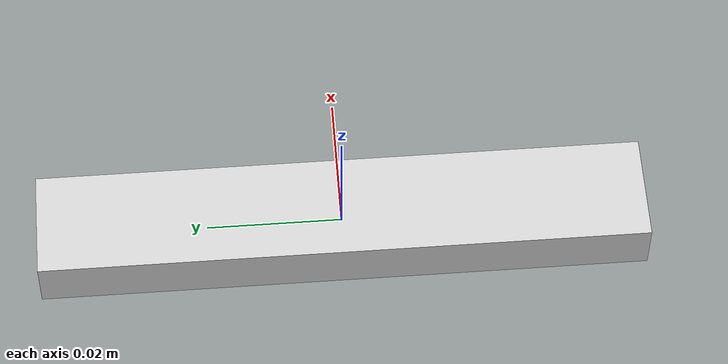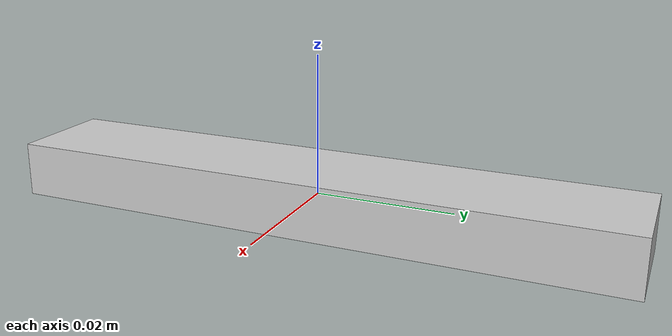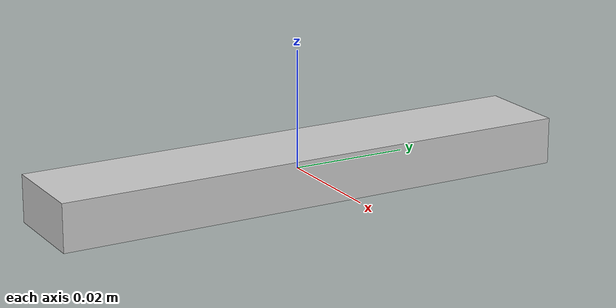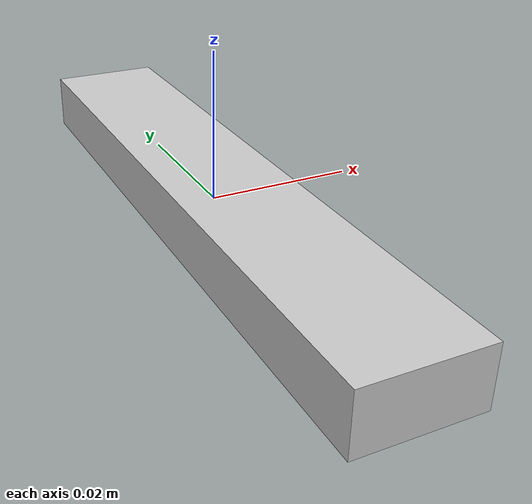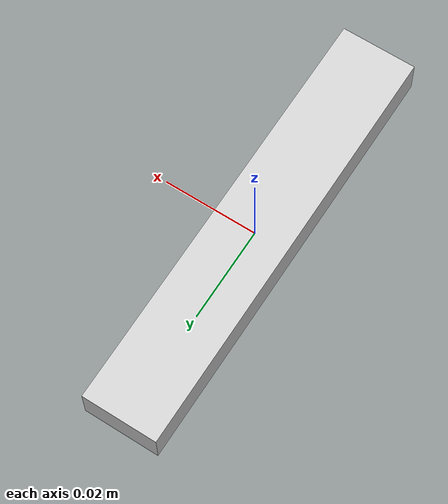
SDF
<?xml version="1.0" ?>
<sdf version="1.5">
  <!-- Scissors: box 0.016 x 0.090 x 0.008 → min(x,z) width = 8mm... but grip on 16mm axis: hand_close=12 -->
  <model name="scissors">
    <link name="link">
      <pose>0 0 0 0 0 0</pose>
      <inertial>
        <mass>0.010</mass>
        <inertia>
          <ixx>6.18e-6</ixx>
          <ixy>0</ixy><ixz>0</ixz>
          <iyy>6.87e-6</iyy>
          <iyz>0</iyz>
          <izz>8.53e-7</izz>
        </inertia>
      </inertial>
      <collision name="collision">
        <geometry>
          <box><size>0.016 0.090 0.008</size></box>
        </geometry>
        <surface>
          <contact><ode><kp>1000000</kp><kd>100</kd><max_vel>0.1</max_vel><min_depth>0.001</min_depth></ode></contact>
          <friction><ode><mu>1.0</mu><mu2>1.0</mu2></ode><torsional><coefficient>1.0</coefficient><use_patch_radius>0</use_patch_radius><surface_radius>0.008</surface_radius></torsional></friction>
        </surface>
      </collision>
      <visual name="visual">
        <geometry><box><size>0.016 0.090 0.008</size></box></geometry>
        <material><ambient>0.8 0.8 0.8 1</ambient><diffuse>0.8 0.8 0.8 1</diffuse></material>
      </visual>
    </link>
  </model>
</sdf>
